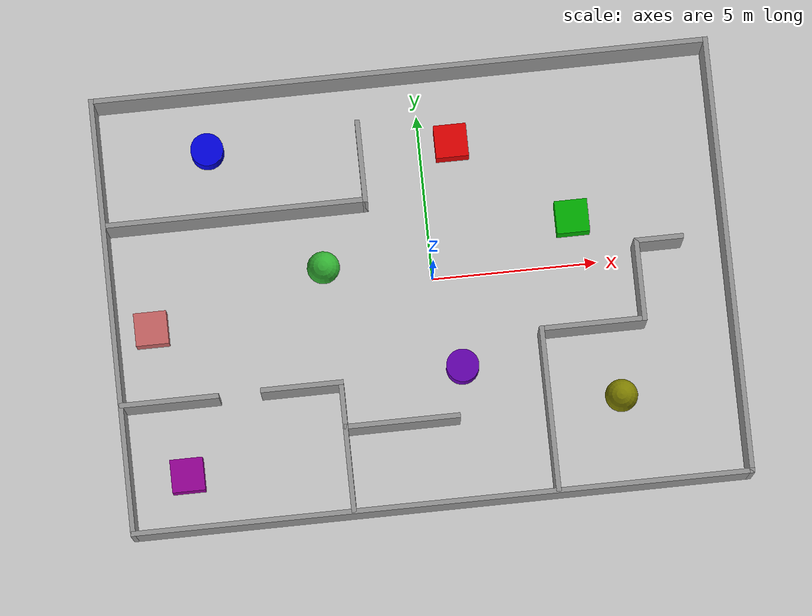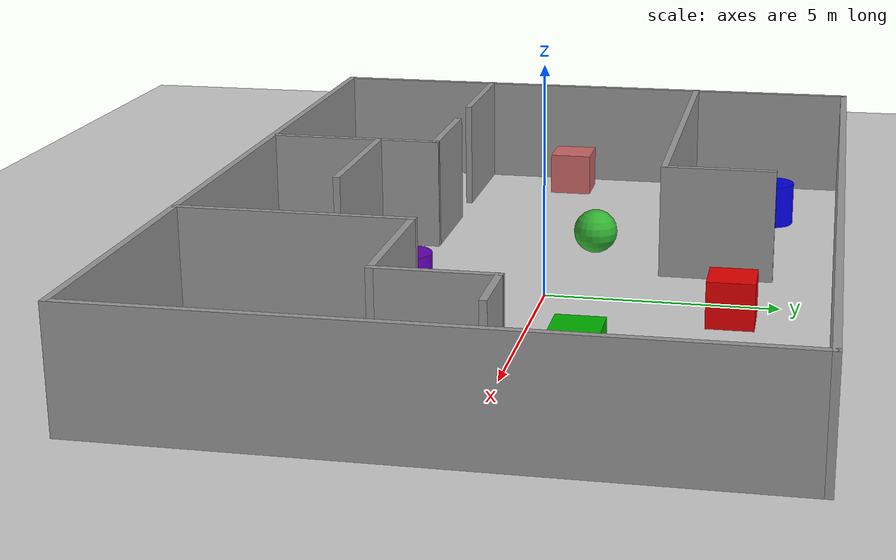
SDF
<sdf version="1.7">
 <world name="default">
  <light name="sun" type="directional">
   <pose>0 0 10 0 -0 0</pose>
   <diffuse>0.8 0.8 0.8 1</diffuse>
   <specular>0.2 0.2 0.2 1</specular>
   <attenuation>
    <range>1000</range>
    <constant>0.9</constant>
    <linear>0.01</linear>
    <quadratic>0.001</quadratic>
   </attenuation>
   <direction>-0.5 0.1 -0.9</direction>
   <spot><inner_angle>0</inner_angle><outer_angle>0</outer_angle><falloff>0</falloff></spot>
  </light>
  <model name="ground_plane">
   <static>1</static>
   <link name="link">
    <collision name="collision">
     <geometry><plane><normal>0 0 1</normal><size>100 100</size></plane></geometry>
     <surface><friction><ode><mu>100</mu><mu2>50</mu2></ode></friction></surface>
    </collision>
    <visual name="visual">
     <cast_shadows>0</cast_shadows>
     <geometry><plane><normal>0 0 1</normal><size>100 100</size></plane></geometry>
     <material>
      <script><uri>file://media/materials/scripts/gazebo.material</uri><name>Gazebo/Grey</name></script>
     </material>
    </visual>
   </link>
  </model>
  <gravity>0 0 -9.8</gravity>
  <magnetic_field>6e-06 2.3e-05 -4.2e-05</magnetic_field>
  <atmosphere type="adiabatic"/>
  <physics type="ode">
   <max_step_size>0.001</max_step_size>
   <real_time_factor>1</real_time_factor>
   <real_time_update_rate>1000</real_time_update_rate>
  </physics>
  <scene><ambient>0.4 0.4 0.4 1</ambient><background>0.7 0.7 0.7 1</background><shadows>1</shadows></scene>
  <audio><device>default</device></audio>
  <spherical_coordinates>
   <surface_model>EARTH_WGS84</surface_model>
   <latitude_deg>0</latitude_deg>
   <longitude_deg>0</longitude_deg>
   <elevation>0</elevation>
   <heading_deg>0</heading_deg>
  </spherical_coordinates>
  <model name="world">
   <pose>-0.425017 -0.421094 0 0 -0 0</pose>
   <link name="Wall_10">
    <collision name="Wall_10_Collision">
     <geometry><box><size>13.25 0.15 2.5</size></box></geometry>
     <pose>0 0 1.25 0 -0 0</pose>
    </collision>
    <visual name="Wall_10_Visual">
     <pose>0 0 1.25 0 -0 0</pose>
     <geometry><box><size>13.25 0.15 2.5</size></box></geometry>
     <material>
      <script><uri>file://media/materials/scripts/gazebo.material</uri><name>Gazebo/Grey</name></script>
      <ambient>1 1 1 1</ambient>
     </material>
     <meta><layer>0</layer></meta>
    </visual>
    <pose>-9.3 0 0 0 -0 -1.5708</pose>
   </link>
   <link name="Wall_11">
    <collision name="Wall_11_Collision">
     <geometry><box><size>18.75 0.15 2.5</size></box></geometry>
     <pose>0 0 1.25 0 -0 0</pose>
    </collision>
    <visual name="Wall_11_Visual">
     <pose>0 0 1.25 0 -0 0</pose>
     <geometry><box><size>18.75 0.15 2.5</size></box></geometry>
     <material>
      <script><uri>file://media/materials/scripts/gazebo.material</uri><name>Gazebo/Grey</name></script>
      <ambient>1 1 1 1</ambient>
     </material>
     <meta><layer>0</layer></meta>
    </visual>
    <pose>-0 -6.55 0 0 -0 0</pose>
   </link>
   <link name="Wall_12">
    <collision name="Wall_12_Collision">
     <geometry><box><size>13.25 0.15 2.5</size></box></geometry>
     <pose>0 0 1.25 0 -0 0</pose>
    </collision>
    <visual name="Wall_12_Visual">
     <pose>0 0 1.25 0 -0 0</pose>
     <geometry><box><size>13.25 0.15 2.5</size></box></geometry>
     <material>
      <script><uri>file://media/materials/scripts/gazebo.material</uri><name>Gazebo/Grey</name></script>
      <ambient>1 1 1 1</ambient>
     </material>
     <meta><layer>0</layer></meta>
    </visual>
    <pose>9.3 0 0 0 -0 1.5708</pose>
   </link>
   <link name="Wall_13">
    <collision name="Wall_13_Collision">
     <geometry><box><size>18.75 0.15 2.5</size></box></geometry>
     <pose>0 0 1.25 0 -0 0</pose>
    </collision>
    <visual name="Wall_13_Visual">
     <pose>0 0 1.25 0 -0 0</pose>
     <geometry><box><size>18.75 0.15 2.5</size></box></geometry>
     <material>
      <script><uri>file://media/materials/scripts/gazebo.material</uri><name>Gazebo/Grey</name></script>
      <ambient>1 1 1 1</ambient>
     </material>
     <meta><layer>0</layer></meta>
    </visual>
    <pose>-0 6.55 0 0 -0 3.14159</pose>
   </link>
   <link name="Wall_15">
    <collision name="Wall_15_Collision">
     <geometry><box><size>3 0.15 2.5</size></box></geometry>
     <pose>0 0 1.25 0 -0 0</pose>
    </collision>
    <visual name="Wall_15_Visual">
     <pose>0 0 1.25 0 -0 0</pose>
     <geometry><box><size>3 0.15 2.5</size></box></geometry>
     <material>
      <script><uri>file://media/materials/scripts/gazebo.material</uri><name>Gazebo/Grey</name></script>
      <ambient>1 1 1 1</ambient>
     </material>
     <meta><layer>0</layer></meta>
    </visual>
    <pose>-7.84441 -2.68825 0 0 -0 0</pose>
   </link>
   <link name="Wall_17">
    <collision name="Wall_17_Collision">
     <geometry><box><size>2.5 0.15 2.5</size></box></geometry>
     <pose>0 0 1.25 0 -0 0</pose>
    </collision>
    <visual name="Wall_17_Visual">
     <pose>0 0 1.25 0 -0 0</pose>
     <geometry><box><size>2.5 0.15 2.5</size></box></geometry>
     <material>
      <script><uri>file://media/materials/scripts/gazebo.material</uri><name>Gazebo/Grey</name></script>
      <ambient>1 1 1 1</ambient>
     </material>
     <meta><layer>0</layer></meta>
    </visual>
    <pose>-3.84237 -2.65766 0 0 -0 0</pose>
   </link>
   <link name="Wall_18">
    <collision name="Wall_18_Collision">
     <geometry><box><size>4 0.15 2.5</size></box></geometry>
     <pose>0 0 1.25 0 -0 0</pose>
    </collision>
    <visual name="Wall_18_Visual">
     <pose>0 0 1.25 0 -0 0</pose>
     <geometry><box><size>4 0.15 2.5</size></box></geometry>
     <material>
      <script><uri>file://media/materials/scripts/gazebo.material</uri><name>Gazebo/Grey</name></script>
      <ambient>1 1 1 1</ambient>
     </material>
     <meta><layer>0</layer></meta>
    </visual>
    <pose>-2.66737 -4.58266 0 0 -0 -1.5708</pose>
   </link>
   <link name="Wall_20">
    <collision name="Wall_20_Collision">
     <geometry><box><size>5 0.15 2.5</size></box></geometry>
     <pose>0 0 1.25 0 -0 0</pose>
    </collision>
    <visual name="Wall_20_Visual">
     <pose>0 0 1.25 0 -0 0</pose>
     <geometry><box><size>5 0.15 2.5</size></box></geometry>
     <material>
      <script><uri>file://media/materials/scripts/gazebo.material</uri><name>Gazebo/Grey</name></script>
      <ambient>1 1 1 1</ambient>
     </material>
     <meta><layer>0</layer></meta>
    </visual>
    <pose>3.48671 -4.08703 0 0 -0 1.5708</pose>
   </link>
   <link name="Wall_21">
    <collision name="Wall_21_Collision">
     <geometry><box><size>3.25 0.15 2.5</size></box></geometry>
     <pose>0 0 1.25 0 -0 0</pose>
    </collision>
    <visual name="Wall_21_Visual">
     <pose>0 0 1.25 0 -0 0</pose>
     <geometry><box><size>3.25 0.15 2.5</size></box></geometry>
     <material>
      <script><uri>file://media/materials/scripts/gazebo.material</uri><name>Gazebo/Grey</name></script>
      <ambient>1 1 1 1</ambient>
     </material>
     <meta><layer>0</layer></meta>
    </visual>
    <pose>5.03672 -1.66203 0 0 -0 0</pose>
   </link>
   <link name="Wall_22">
    <collision name="Wall_22_Collision">
     <geometry><box><size>2.5 0.15 2.5</size></box></geometry>
     <pose>0 0 1.25 0 -0 0</pose>
    </collision>
    <visual name="Wall_22_Visual">
     <pose>0 0 1.25 0 -0 0</pose>
     <geometry><box><size>2.5 0.15 2.5</size></box></geometry>
     <material>
      <script><uri>file://media/materials/scripts/gazebo.material</uri><name>Gazebo/Grey</name></script>
      <ambient>1 1 1 1</ambient>
     </material>
     <meta><layer>0</layer></meta>
    </visual>
    <pose>6.58671 -0.487027 0 0 -0 1.5708</pose>
   </link>
   <link name="Wall_23">
    <collision name="Wall_23_Collision">
     <geometry><box><size>1.5 0.15 2.5</size></box></geometry>
     <pose>0 0 1.25 0 -0 0</pose>
    </collision>
    <visual name="Wall_23_Visual">
     <pose>0 0 1.25 0 -0 0</pose>
     <geometry><box><size>1.5 0.15 2.5</size></box></geometry>
     <material>
      <script><uri>file://media/materials/scripts/gazebo.material</uri><name>Gazebo/Grey</name></script>
      <ambient>1 1 1 1</ambient>
     </material>
     <meta><layer>0</layer></meta>
    </visual>
    <pose>7.26171 0.687973 0 0 -0 0</pose>
   </link>
   <link name="Wall_25">
    <collision name="Wall_25_Collision">
     <geometry><box><size>8 0.15 2.5</size></box></geometry>
     <pose>0 0 1.25 0 -0 0</pose>
    </collision>
    <visual name="Wall_25_Visual">
     <pose>0 0 1.25 0 -0 0</pose>
     <geometry><box><size>8 0.15 2.5</size></box></geometry>
     <material>
      <script><uri>file://media/materials/scripts/gazebo.material</uri><name>Gazebo/Grey</name></script>
      <ambient>1 1 1 1</ambient>
     </material>
     <meta><layer>0</layer></meta>
    </visual>
    <pose>-5.31382 2.75681 0 0 -0 0</pose>
   </link>
   <link name="Wall_26">
    <collision name="Wall_26_Collision">
     <geometry><box><size>2.5 0.15 2.5</size></box></geometry>
     <pose>0 0 1.25 0 -0 0</pose>
    </collision>
    <visual name="Wall_26_Visual">
     <pose>0 0 1.25 0 -0 0</pose>
     <geometry><box><size>2.5 0.15 2.5</size></box></geometry>
     <material>
      <script><uri>file://media/materials/scripts/gazebo.material</uri><name>Gazebo/Grey</name></script>
      <ambient>1 1 1 1</ambient>
     </material>
     <meta><layer>0</layer></meta>
    </visual>
    <pose>-1.38882 3.93181 0 0 -0 1.5708</pose>
   </link>
   <link name="Wall_28">
    <collision name="Wall_28_Collision">
     <geometry><box><size>3.5 0.15 2.5</size></box></geometry>
     <pose>0 0 1.25 0 -0 0</pose>
    </collision>
    <visual name="Wall_28_Visual">
     <pose>0 0 1.25 0 -0 0</pose>
     <geometry><box><size>3.5 0.15 2.5</size></box></geometry>
     <material>
      <script><uri>file://media/materials/scripts/gazebo.material</uri><name>Gazebo/Grey</name></script>
      <ambient>1 1 1 1</ambient>
     </material>
     <meta><layer>0</layer></meta>
    </visual>
    <pose>-0.95633 -4.00363 0 0 -0 0</pose>
   </link>
   <static>1</static>
  </model>
  <model name="unit_box_0">
   <link name="link">
    <inertial>
     <mass>1</mass>
     <inertia>
      <ixx>0.166667</ixx>
      <ixy>0</ixy>
      <ixz>0</ixz>
      <iyy>0.166667</iyy>
      <iyz>0</iyz>
      <izz>0.166667</izz>
     </inertia>
    </inertial>
    <visual name="visual">
     <geometry><box><size>1 1 1</size></box></geometry>
     <material>
      <script><name>Gazebo/Grey</name><uri>file://media/materials/scripts/gazebo.material</uri></script>
      <shader type="pixel"><normal_map>__default__</normal_map></shader>
      <ambient>0.9 0 0 0</ambient>
      <diffuse>0.7 0.7 0.7 1</diffuse>
      <specular>0.01 0.01 0.01 1</specular>
      <emissive>0 0 0 1</emissive>
     </material>
    </visual>
    <collision name="collision">
     <geometry><box><size>1 1 1</size></box></geometry>
     <surface>
      <friction>
       <ode><mu>1</mu><mu2>1</mu2><fdir1>0 0 0</fdir1><slip1>0</slip1><slip2>0</slip2></ode>
       <torsional>
        <coefficient>1</coefficient>
        <patch_radius>0</patch_radius>
        <surface_radius>0</surface_radius>
        <use_patch_radius>1</use_patch_radius>
        <ode><slip>0</slip></ode>
       </torsional>
      </friction>
      <bounce><restitution_coefficient>0</restitution_coefficient><threshold>1e+06</threshold></bounce>
      <contact>
       <collide_without_contact>0</collide_without_contact>
       <collide_without_contact_bitmask>1</collide_without_contact_bitmask>
       <collide_bitmask>1</collide_bitmask>
       <ode>
        <soft_cfm>0</soft_cfm>
        <soft_erp>0.2</soft_erp>
        <kp>1e+13</kp>
        <kd>1</kd>
        <max_vel>0.01</max_vel>
        <min_depth>0</min_depth>
       </ode>
       <bullet>
        <split_impulse>1</split_impulse>
        <split_impulse_penetration_threshold>-0.01</split_impulse_penetration_threshold>
        <soft_cfm>0</soft_cfm>
        <soft_erp>0.2</soft_erp>
        <kp>1e+13</kp>
        <kd>1</kd>
       </bullet>
      </contact>
     </surface>
    </collision>
   </link>
   <static>0</static>
   <pose>0.964445 4.04607 0.5 0 -0 0</pose>
  </model>
  <model name="unit_cylinder">
   <link name="link">
    <inertial>
     <mass>1</mass>
     <inertia><ixx>0.145833</ixx><ixy>0</ixy><ixz>0</ixz><iyy>0.145833</iyy><iyz>0</iyz><izz>0.125</izz></inertia>
    </inertial>
    <visual name="visual">
     <geometry><cylinder><radius>0.5</radius><length>1</length></cylinder></geometry>
     <material>
      <script><name>Gazebo/Grey</name><uri>file://media/materials/scripts/gazebo.material</uri></script>
      <shader type="pixel"><normal_map>__default__</normal_map></shader>
      <ambient>0.4 0 0.7 0</ambient>
      <diffuse>0.7 0.7 0.7 1</diffuse>
      <specular>0.01 0.01 0.01 1</specular>
      <emissive>0 0 0 1</emissive>
     </material>
    </visual>
    <collision name="collision">
     <geometry><cylinder><radius>0.5</radius><length>1</length></cylinder></geometry>
     <surface>
      <friction>
       <ode><mu>1</mu><mu2>1</mu2><fdir1>0 0 0</fdir1><slip1>0</slip1><slip2>0</slip2></ode>
       <torsional>
        <coefficient>1</coefficient>
        <patch_radius>0</patch_radius>
        <surface_radius>0</surface_radius>
        <use_patch_radius>1</use_patch_radius>
        <ode><slip>0</slip></ode>
       </torsional>
      </friction>
      <bounce><restitution_coefficient>0</restitution_coefficient><threshold>1e+06</threshold></bounce>
      <contact>
       <collide_without_contact>0</collide_without_contact>
       <collide_without_contact_bitmask>1</collide_without_contact_bitmask>
       <collide_bitmask>1</collide_bitmask>
       <ode>
        <soft_cfm>0</soft_cfm>
        <soft_erp>0.2</soft_erp>
        <kp>1e+13</kp>
        <kd>1</kd>
        <max_vel>0.01</max_vel>
        <min_depth>0</min_depth>
       </ode>
       <bullet>
        <split_impulse>1</split_impulse>
        <split_impulse_penetration_threshold>-0.01</split_impulse_penetration_threshold>
        <soft_cfm>0</soft_cfm>
        <soft_erp>0.2</soft_erp>
        <kp>1e+13</kp>
        <kd>1</kd>
       </bullet>
      </contact>
     </surface>
    </collision>
   </link>
   <static>0</static>
   <pose>0.617803 -2.80458 0.5 0 -0 0</pose>
  </model>
  <model name="unit_cylinder_0">
   <link name="link">
    <inertial>
     <mass>1</mass>
     <inertia><ixx>0.145833</ixx><ixy>0</ixy><ixz>0</ixz><iyy>0.145833</iyy><iyz>0</iyz><izz>0.125</izz></inertia>
    </inertial>
    <visual name="visual">
     <geometry><cylinder><radius>0.5</radius><length>1</length></cylinder></geometry>
     <material>
      <script><name>Gazebo/Grey</name><uri>file://media/materials/scripts/gazebo.material</uri></script>
      <shader type="pixel"><normal_map>__default__</normal_map></shader>
      <ambient>0 0 0.9 0</ambient>
      <diffuse>0.7 0.7 0.7 1</diffuse>
      <specular>0.01 0.01 0.01 1</specular>
      <emissive>0 0 0 1</emissive>
     </material>
    </visual>
    <collision name="collision">
     <geometry><cylinder><radius>0.5</radius><length>1</length></cylinder></geometry>
     <surface>
      <friction>
       <ode><mu>1</mu><mu2>1</mu2><fdir1>0 0 0</fdir1><slip1>0</slip1><slip2>0</slip2></ode>
       <torsional>
        <coefficient>1</coefficient>
        <patch_radius>0</patch_radius>
        <surface_radius>0</surface_radius>
        <use_patch_radius>1</use_patch_radius>
        <ode><slip>0</slip></ode>
       </torsional>
      </friction>
      <bounce><restitution_coefficient>0</restitution_coefficient><threshold>1e+06</threshold></bounce>
      <contact>
       <collide_without_contact>0</collide_without_contact>
       <collide_without_contact_bitmask>1</collide_without_contact_bitmask>
       <collide_bitmask>1</collide_bitmask>
       <ode>
        <soft_cfm>0</soft_cfm>
        <soft_erp>0.2</soft_erp>
        <kp>1e+13</kp>
        <kd>1</kd>
        <max_vel>0.01</max_vel>
        <min_depth>0</min_depth>
       </ode>
       <bullet>
        <split_impulse>1</split_impulse>
        <split_impulse_penetration_threshold>-0.01</split_impulse_penetration_threshold>
        <soft_cfm>0</soft_cfm>
        <soft_erp>0.2</soft_erp>
        <kp>1e+13</kp>
        <kd>1</kd>
       </bullet>
      </contact>
     </surface>
    </collision>
   </link>
   <static>0</static>
   <pose>-6.43053 4.53284 0.499993 -3e-06 -3e-06 0</pose>
  </model>
  <model name="unit_sphere_0">
   <link name="link">
    <inertial>
     <mass>1</mass>
     <inertia><ixx>0.1</ixx><ixy>0</ixy><ixz>0</ixz><iyy>0.1</iyy><iyz>0</iyz><izz>0.1</izz></inertia>
    </inertial>
    <visual name="visual">
     <geometry><sphere><radius>0.5</radius></sphere></geometry>
     <material>
      <script><name>Gazebo/Grey</name><uri>file://media/materials/scripts/gazebo.material</uri></script>
      <shader type="pixel"><normal_map>__default__</normal_map></shader>
      <ambient>0.5 0.5 0 0</ambient>
      <diffuse>0.7 0.7 0.7 1</diffuse>
      <specular>0.01 0.01 0.01 1</specular>
      <emissive>0 0 0 1</emissive>
     </material>
    </visual>
    <collision name="collision">
     <geometry><sphere><radius>0.5</radius></sphere></geometry>
     <surface>
      <friction>
       <ode><mu>1</mu><mu2>1</mu2><fdir1>0 0 0</fdir1><slip1>0</slip1><slip2>0</slip2></ode>
       <torsional>
        <coefficient>1</coefficient>
        <patch_radius>0</patch_radius>
        <surface_radius>0</surface_radius>
        <use_patch_radius>1</use_patch_radius>
        <ode><slip>0</slip></ode>
       </torsional>
      </friction>
      <bounce><restitution_coefficient>0</restitution_coefficient><threshold>1e+06</threshold></bounce>
      <contact>
       <collide_without_contact>0</collide_without_contact>
       <collide_without_contact_bitmask>1</collide_without_contact_bitmask>
       <collide_bitmask>1</collide_bitmask>
       <ode>
        <soft_cfm>0</soft_cfm>
        <soft_erp>0.2</soft_erp>
        <kp>1e+13</kp>
        <kd>1</kd>
        <max_vel>0.01</max_vel>
        <min_depth>0</min_depth>
       </ode>
       <bullet>
        <split_impulse>1</split_impulse>
        <split_impulse_penetration_threshold>-0.01</split_impulse_penetration_threshold>
        <soft_cfm>0</soft_cfm>
        <soft_erp>0.2</soft_erp>
        <kp>1e+13</kp>
        <kd>1</kd>
       </bullet>
      </contact>
     </surface>
    </collision>
   </link>
   <static>0</static>
   <pose>5.31545 -4.16456 0.5 0 -0 0</pose>
  </model>
  <model name="unit_box">
   <link name="link">
    <inertial>
     <mass>1</mass>
     <inertia>
      <ixx>0.166667</ixx>
      <ixy>0</ixy>
      <ixz>0</ixz>
      <iyy>0.166667</iyy>
      <iyz>0</iyz>
      <izz>0.166667</izz>
     </inertia>
    </inertial>
    <visual name="visual">
     <geometry><box><size>1 1 1</size></box></geometry>
     <material>
      <script><name>Gazebo/Grey</name><uri>file://media/materials/scripts/gazebo.material</uri></script>
      <shader type="pixel"><normal_map>__default__</normal_map></shader>
      <ambient>0.8 0.4 0.4 0</ambient>
      <diffuse>0.7 0.7 0.7 1</diffuse>
      <specular>0.01 0.01 0.01 1</specular>
      <emissive>0 0 0 1</emissive>
     </material>
    </visual>
    <collision name="collision">
     <geometry><box><size>1 1 1</size></box></geometry>
     <surface>
      <friction>
       <ode><mu>1</mu><mu2>1</mu2><fdir1>0 0 0</fdir1><slip1>0</slip1><slip2>0</slip2></ode>
       <torsional>
        <coefficient>1</coefficient>
        <patch_radius>0</patch_radius>
        <surface_radius>0</surface_radius>
        <use_patch_radius>1</use_patch_radius>
        <ode><slip>0</slip></ode>
       </torsional>
      </friction>
      <bounce><restitution_coefficient>0</restitution_coefficient><threshold>1e+06</threshold></bounce>
      <contact>
       <collide_without_contact>0</collide_without_contact>
       <collide_without_contact_bitmask>1</collide_without_contact_bitmask>
       <collide_bitmask>1</collide_bitmask>
       <ode>
        <soft_cfm>0</soft_cfm>
        <soft_erp>0.2</soft_erp>
        <kp>1e+13</kp>
        <kd>1</kd>
        <max_vel>0.01</max_vel>
        <min_depth>0</min_depth>
       </ode>
       <bullet>
        <split_impulse>1</split_impulse>
        <split_impulse_penetration_threshold>-0.01</split_impulse_penetration_threshold>
        <soft_cfm>0</soft_cfm>
        <soft_erp>0.2</soft_erp>
        <kp>1e+13</kp>
        <kd>1</kd>
       </bullet>
      </contact>
     </surface>
    </collision>
   </link>
   <static>0</static>
   <pose>-8.64724 -0.725983 0.5 0 -0 0</pose>
  </model>
  <model name="unit_sphere">
   <link name="link">
    <inertial>
     <mass>1</mass>
     <inertia><ixx>0.1</ixx><ixy>0</ixy><ixz>0</ixz><iyy>0.1</iyy><iyz>0</iyz><izz>0.1</izz></inertia>
    </inertial>
    <visual name="visual">
     <geometry><sphere><radius>0.5</radius></sphere></geometry>
     <material>
      <script><name>Gazebo/Grey</name><uri>file://media/materials/scripts/gazebo.material</uri></script>
      <shader type="pixel"><normal_map>__default__</normal_map></shader>
      <ambient>0.2 0.7 0.2 0</ambient>
      <diffuse>0.7 0.7 0.7 1</diffuse>
      <specular>0.01 0.01 0.01 1</specular>
      <emissive>0 0 0 1</emissive>
     </material>
    </visual>
    <collision name="collision">
     <geometry><sphere><radius>0.5</radius></sphere></geometry>
     <surface>
      <friction>
       <ode><mu>1</mu><mu2>1</mu2><fdir1>0 0 0</fdir1><slip1>0</slip1><slip2>0</slip2></ode>
       <torsional>
        <coefficient>1</coefficient>
        <patch_radius>0</patch_radius>
        <surface_radius>0</surface_radius>
        <use_patch_radius>1</use_patch_radius>
        <ode><slip>0</slip></ode>
       </torsional>
      </friction>
      <bounce><restitution_coefficient>0</restitution_coefficient><threshold>1e+06</threshold></bounce>
      <contact>
       <collide_without_contact>0</collide_without_contact>
       <collide_without_contact_bitmask>1</collide_without_contact_bitmask>
       <collide_bitmask>1</collide_bitmask>
       <ode>
        <soft_cfm>0</soft_cfm>
        <soft_erp>0.2</soft_erp>
        <kp>1e+13</kp>
        <kd>1</kd>
        <max_vel>0.01</max_vel>
        <min_depth>0</min_depth>
       </ode>
       <bullet>
        <split_impulse>1</split_impulse>
        <split_impulse_penetration_threshold>-0.01</split_impulse_penetration_threshold>
        <soft_cfm>0</soft_cfm>
        <soft_erp>0.2</soft_erp>
        <kp>1e+13</kp>
        <kd>1</kd>
       </bullet>
      </contact>
     </surface>
    </collision>
   </link>
   <static>0</static>
   <pose>-3.27719 0.635846 0.5 0 -0 0</pose>
  </model>
  <model name="unit_box_2">
   <link name="link">
    <inertial>
     <mass>1</mass>
     <inertia>
      <ixx>0.166667</ixx>
      <ixy>0</ixy>
      <ixz>0</ixz>
      <iyy>0.166667</iyy>
      <iyz>0</iyz>
      <izz>0.166667</izz>
     </inertia>
    </inertial>
    <visual name="visual">
     <geometry><box><size>1 1 1</size></box></geometry>
     <material>
      <script><name>Gazebo/Grey</name><uri>file://media/materials/scripts/gazebo.material</uri></script>
      <shader type="pixel"><normal_map>__default__</normal_map></shader>
      <ambient>0.6 0 0.6 0</ambient>
      <diffuse>0.7 0.7 0.7 1</diffuse>
      <specular>0.01 0.01 0.01 1</specular>
      <emissive>0 0 0 1</emissive>
     </material>
    </visual>
    <collision name="collision">
     <geometry><box><size>1 1 1</size></box></geometry>
     <surface>
      <friction>
       <ode><mu>1</mu><mu2>1</mu2><fdir1>0 0 0</fdir1><slip1>0</slip1><slip2>0</slip2></ode>
       <torsional>
        <coefficient>1</coefficient>
        <patch_radius>0</patch_radius>
        <surface_radius>0</surface_radius>
        <use_patch_radius>1</use_patch_radius>
        <ode><slip>0</slip></ode>
       </torsional>
      </friction>
      <bounce><restitution_coefficient>0</restitution_coefficient><threshold>1e+06</threshold></bounce>
      <contact>
       <collide_without_contact>0</collide_without_contact>
       <collide_without_contact_bitmask>1</collide_without_contact_bitmask>
       <collide_bitmask>1</collide_bitmask>
       <ode>
        <soft_cfm>0</soft_cfm>
        <soft_erp>0.2</soft_erp>
        <kp>1e+13</kp>
        <kd>1</kd>
        <max_vel>0.01</max_vel>
        <min_depth>0</min_depth>
       </ode>
       <bullet>
        <split_impulse>1</split_impulse>
        <split_impulse_penetration_threshold>-0.01</split_impulse_penetration_threshold>
        <soft_cfm>0</soft_cfm>
        <soft_erp>0.2</soft_erp>
        <kp>1e+13</kp>
        <kd>1</kd>
       </bullet>
      </contact>
     </surface>
    </collision>
   </link>
   <static>0</static>
   <pose>-7.98359 -5.25808 0.5 0 -0 0</pose>
  </model>
  <model name="unit_box_1">
   <link name="link">
    <inertial>
     <mass>1</mass>
     <inertia>
      <ixx>0.166667</ixx>
      <ixy>0</ixy>
      <ixz>0</ixz>
      <iyy>0.166667</iyy>
      <iyz>0</iyz>
      <izz>0.166667</izz>
     </inertia>
    </inertial>
    <visual name="visual">
     <geometry><box><size>1 1 1</size></box></geometry>
     <material>
      <script><name>Gazebo/Grey</name><uri>file://media/materials/scripts/gazebo.material</uri></script>
      <shader type="pixel"><normal_map>__default__</normal_map></shader>
      <ambient>0 0.7 0 0</ambient>
      <diffuse>0.7 0.7 0.7 1</diffuse>
      <specular>0.01 0.01 0.01 1</specular>
      <emissive>0 0 0 1</emissive>
     </material>
    </visual>
    <collision name="collision">
     <geometry><box><size>1 1 1</size></box></geometry>
     <surface>
      <friction>
       <ode><mu>1</mu><mu2>1</mu2><fdir1>0 0 0</fdir1><slip1>0</slip1><slip2>0</slip2></ode>
       <torsional>
        <coefficient>1</coefficient>
        <patch_radius>0</patch_radius>
        <surface_radius>0</surface_radius>
        <use_patch_radius>1</use_patch_radius>
        <ode><slip>0</slip></ode>
       </torsional>
      </friction>
      <bounce><restitution_coefficient>0</restitution_coefficient><threshold>1e+06</threshold></bounce>
      <contact>
       <collide_without_contact>0</collide_without_contact>
       <collide_without_contact_bitmask>1</collide_without_contact_bitmask>
       <collide_bitmask>1</collide_bitmask>
       <ode>
        <soft_cfm>0</soft_cfm>
        <soft_erp>0.2</soft_erp>
        <kp>1e+13</kp>
        <kd>1</kd>
        <max_vel>0.01</max_vel>
        <min_depth>0</min_depth>
       </ode>
       <bullet>
        <split_impulse>1</split_impulse>
        <split_impulse_penetration_threshold>-0.01</split_impulse_penetration_threshold>
        <soft_cfm>0</soft_cfm>
        <soft_erp>0.2</soft_erp>
        <kp>1e+13</kp>
        <kd>1</kd>
       </bullet>
      </contact>
     </surface>
    </collision>
   </link>
   <static>0</static>
   <pose>4.37736 1.37624 0.5 0 -0 0</pose>
  </model>
 </world>
</sdf>
